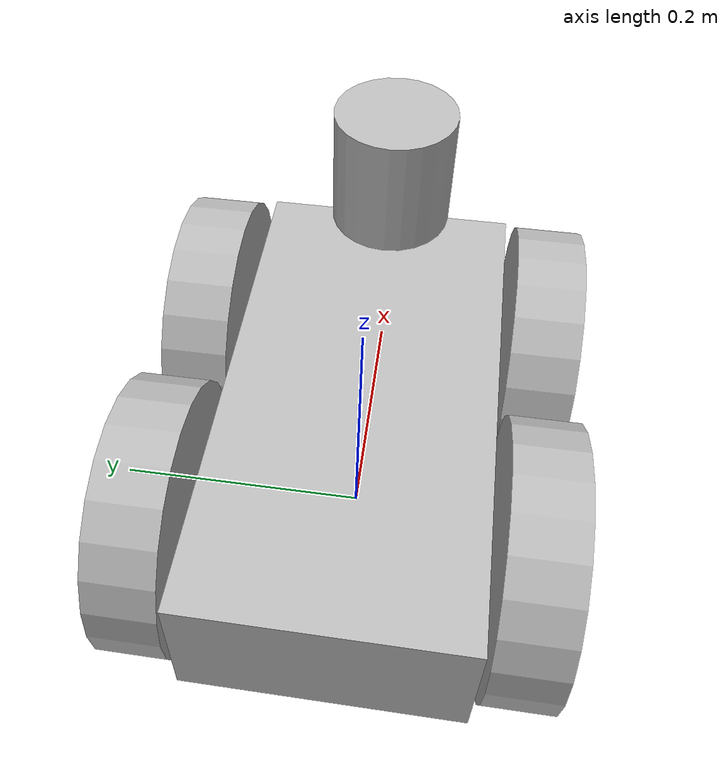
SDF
<?xml version="1.0" ?>
<sdf version="1.6">
  <model name="simple_rover">
    <static>false</static>
    <link name="chassis">
      <pose>0 0 0.1 0 0 0</pose>
      <collision name="collision">
        <geometry>
          <box>
            <size>0.4 0.2 0.1</size>
          </box>
        </geometry>
      </collision>
      <visual name="visual">
        <geometry>
          <box>
            <size>0.4 0.2 0.1</size>
          </box>
        </geometry>
      </visual>
    </link>

    <link name="left_front_wheel">
      <pose>0.1 0.13 0.1 0 1.5707 1.5707</pose>
      <collision name="collision">
        <geometry>
          <cylinder>
            <radius>0.1</radius>
            <length>0.05</length>
          </cylinder>
        </geometry>
      </collision>
      <visual name="visual">
        <geometry>
          <cylinder>
            <radius>0.1</radius>
            <length>0.05</length>
          </cylinder>
        </geometry>
      </visual>
    </link>

    <link name="right_front_wheel">
      <pose>0.1 -0.13 0.1 0 1.5707 1.5707</pose>
      <collision name="collision">
        <geometry>
          <cylinder>
            <radius>0.1</radius>
            <length>0.05</length>
          </cylinder>
        </geometry>
      </collision>
      <visual name="visual">
        <geometry>
          <cylinder>
            <radius>0.1</radius>
            <length>0.05</length>
          </cylinder>
        </geometry>
      </visual>
    </link>

    <link name="left_rear_wheel">
      <pose>-0.1 0.13 0.1 0 1.5707 1.5707</pose>
      <collision name="collision">
        <geometry>
          <cylinder>
            <radius>0.1</radius>
            <length>0.05</length>
          </cylinder>
        </geometry>
      </collision>
      <visual name="visual">
        <geometry>
          <cylinder>
            <radius>0.1</radius>
            <length>0.05</length>
          </cylinder>
        </geometry>
      </visual>
    </link>

    <link name="right_rear_wheel">
      <pose>-0.1 -0.13 0.1 0 1.5707 1.5707</pose>
      <collision name="collision">
        <geometry>
          <cylinder>
            <radius>0.1</radius>
            <length>0.05</length>
          </cylinder>
        </geometry>
      </collision>
      <visual name="visual">
        <geometry>
          <cylinder>
            <radius>0.1</radius>
            <length>0.05</length>
          </cylinder>
        </geometry>
      </visual>
    </link>

    <joint type="revolute" name="left_front_wheel_hinge">
      <child>left_front_wheel</child>
      <parent>chassis</parent>
      <axis>
        <xyz>0 1 0</xyz>
      </axis>
    </joint>

    <joint type="revolute" name="right_front_wheel_hinge">
      <child>right_front_wheel</child>
      <parent>chassis</parent>
      <axis>
        <xyz>0 1 0</xyz>
      </axis>
    </joint>

    <joint type="revolute" name="left_rear_wheel_hinge">
      <child>left_rear_wheel</child>
      <parent>chassis</parent>
      <axis>
        <xyz>0 1 0</xyz>
      </axis>
    </joint>

    <joint type="revolute" name="right_rear_wheel_hinge">
      <child>right_rear_wheel</child>
      <parent>chassis</parent>
      <axis>
        <xyz>0 1 0</xyz>
      </axis>
    </joint>

    <link name="lidar_link">
      <pose>0.2 0 0.2 0 0 0</pose>
      <collision name="collision">
        <geometry>
          <cylinder>
            <radius>0.05</radius>
            <length>0.1</length>
          </cylinder>
        </geometry>
      </collision>
      <visual name="visual">
        <geometry>
          <cylinder>
            <radius>0.05</radius>
            <length>0.1</length>
          </cylinder>
        </geometry>
      </visual>
      <sensor name="lidar" type="ray">
        <pose>0 0 0 0 0 0</pose>
        <visualize>true</visualize>
        <update_rate>100</update_rate>
        <ray>
          <scan>
            <horizontal>
              <samples>1</samples>
              <resolution>1</resolution>
              <min_angle>0</min_angle>
              <max_angle>0</max_angle>
            </horizontal>
          </scan>
          <range>
            <min>0.1</min>
            <max>12.0</max>
            <resolution>0.005</resolution>
          </range>
        </ray>
        <plugin name="laser" filename="libgazebo_ros_ray_sensor.so">
          <topicName>/scan</topicName>
          <frameName>lidar_link</frameName>
          <output_type>sensor_msgs/LaserScan</output_type>
        </plugin>
      </sensor>
    </link>

    <joint name="lidar_joint" type="revolute">
      <parent>chassis</parent>
      <child>lidar_link</child>
      <axis>
        <xyz>0 0 1</xyz>
        <limit>
          <lower>-inf</lower>
          <upper>inf</upper>
        </limit>
      </axis>
    </joint>
  </model>
  <plugin name="lidar_controller" filename="libgazebo_ros_joint_pose_trajectory.so">
    <updateRate>100</updateRate>
    <jointName>lidar_joint</jointName>
    <topicName>/lidar_joint_trajectory</topicName>
  </plugin>
</sdf>
